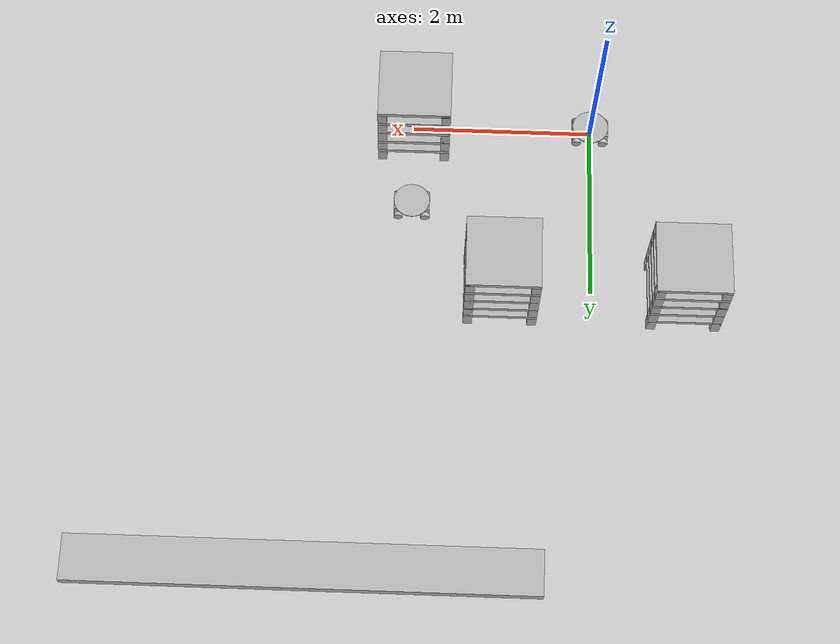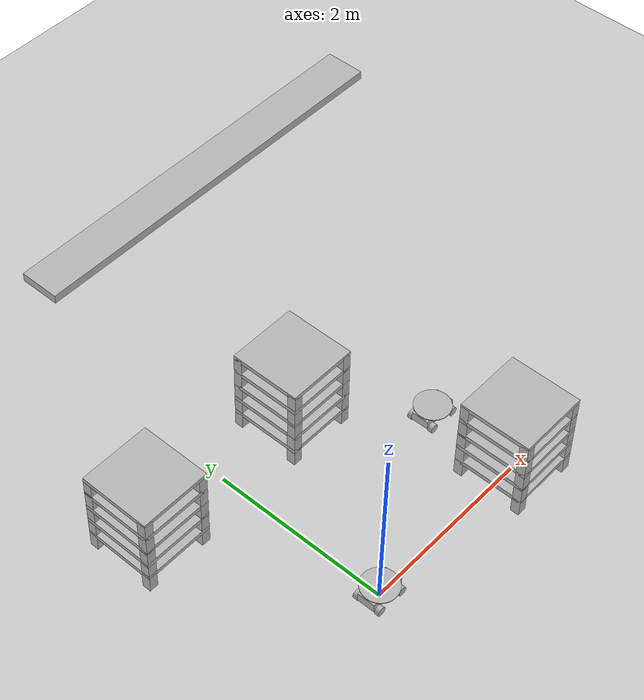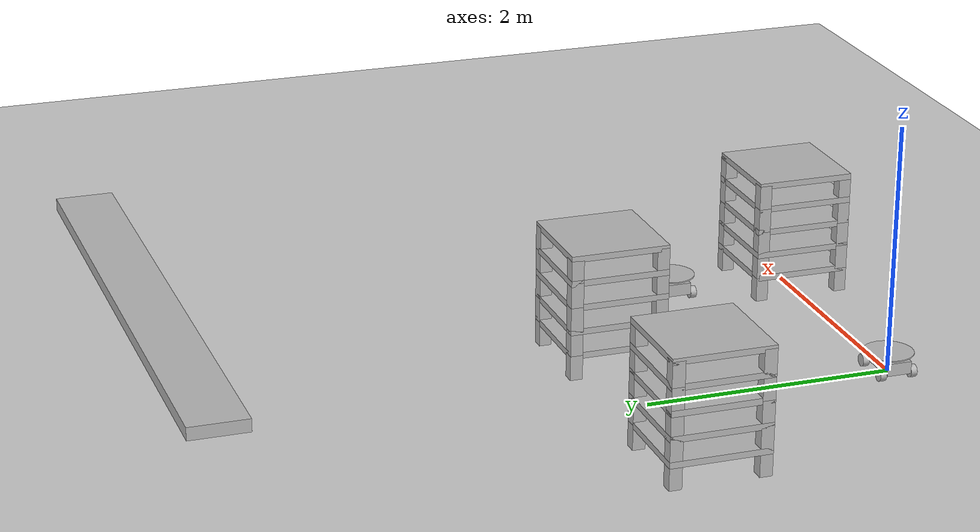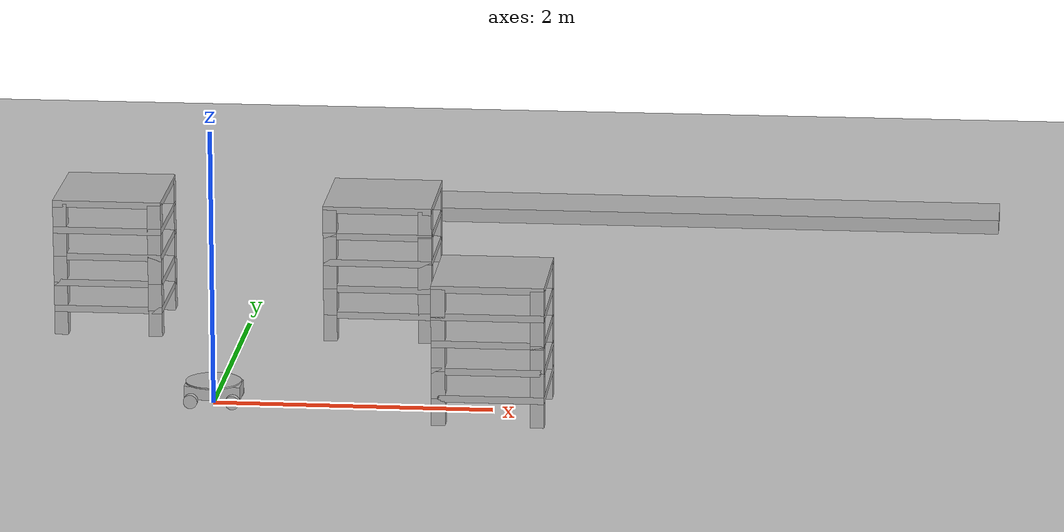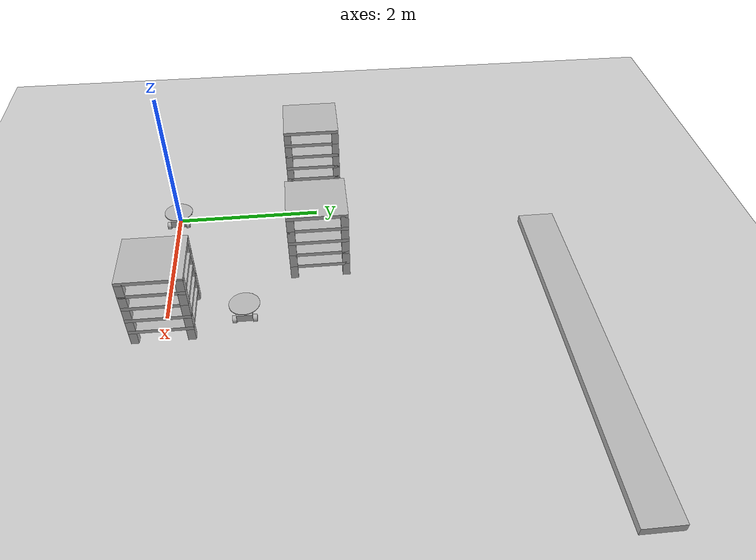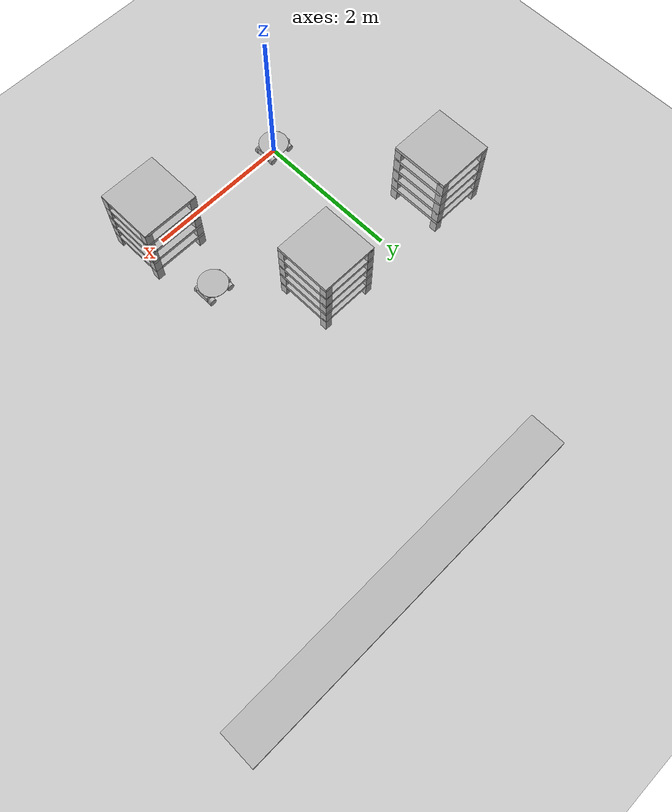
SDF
<?xml version="1.0" ?>
<sdf version="1.5">
	<world name="warehouse">
	<!-- A global light source -->
		<include>
			<uri>model://sun</uri>
		</include>
		<!-- A ground plane -->
		<include>
			<uri>model://ground_plane</uri>
		</include>
		<include>
			<uri>model://kiva</uri>
			<pose>0 0 0 0 0 0</pose>
			<name>kiva_1</name>
		</include>
		<include>
			<uri>model://kiva</uri>
			<pose>2 1 0 0 0 0</pose>
			<name>kiva_2</name>
		</include>
		<include>
			<uri>model://storage_unit</uri>
			<pose>2 0 0 0 0 0</pose>
			<name>storage_unit_1</name>
		</include>
		<include>
			<uri>model://storage_unit</uri>
			<pose>1 2 0 0 0 0</pose>
			<name>storage_unit_2</name>
		</include>
		<include>
			<uri>model://storage_unit</uri>
			<pose>-1 2 0 0 0 0</pose>
			<name>storage_unit_3</name>
		</include>
		<model name="my_model">
  <pose>3 5.2 0 0 0 0</pose>
  <static>true</static>
    <link name="link">
      <collision name="collision">
        <geometry>
          <box>
            <size>5 0.5 0.2</size>
          </box>
        </geometry>
      </collision>
      <visual name="visual">
        <geometry>
          <box>
            <size>5 0.5 0.2</size>
          </box>
        </geometry>
      </visual>
    </link>
  </model>
	</world>
</sdf>

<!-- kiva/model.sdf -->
<sdf version="1.6">
<!-- kiva model -->
		<model name="kiva">
			<static>false</static>
			<link name='chassis'>
           		<pose>0 0 .1 0 0 0</pose>
		        <collision name='collision'>
		         	<geometry>
		           		<box>
		              		<size>.4 .2 .1</size>
		            		</box>
		          	</geometry>
		        	</collision>

		        <visual name='visual'>
		        		<geometry>
		            		<box>
		              		<size>.4 .2 .1</size>
		            		</box>
		          	</geometry>
		        </visual>
          	</link>
          	<link name="left_front_wheel">
        			<pose>0.15 0.13 0.05 0 1.5707 1.5707</pose>
        			<collision name="collision">
          			<geometry>
            				<cylinder>
              				<radius>.05</radius>
              				<length>.05</length>
            				</cylinder>
          			</geometry>
        			</collision>
        			<visual name="visual">
          			<geometry>
            				<cylinder>
              				<radius>.05</radius>
              				<length>.05</length>
            				</cylinder>
          			</geometry>
        			</visual>
      		</link>
      		<link name="left_back_wheel">
        			<pose>-0.15 0.13 0.05 0 1.5707 1.5707</pose>
        			<collision name="collision">
          			<geometry>
            				<cylinder>
              				<radius>.05</radius>
              				<length>.05</length>
            				</cylinder>
          			</geometry>
        			</collision>
        			<visual name="visual">
          			<geometry>
            				<cylinder>
              				<radius>.05</radius>
              				<length>.05</length>
            				</cylinder>
          			</geometry>
        			</visual>
      		</link>
      		<link name="right_front_wheel">
        			<pose>0.15 -0.13 0.05 0 1.5707 1.5707</pose>
        			<collision name="collision">
          			<geometry>
            				<cylinder>
              				<radius>.05</radius>
              				<length>.05</length>
            				</cylinder>
          			</geometry>
        			</collision>
        			<visual name="visual">
          			<geometry>
            				<cylinder>
              				<radius>.05</radius>
              				<length>.05</length>
            				</cylinder>
          			</geometry>
        			</visual>
      		</link>
      		<link name="right_back_wheel">
        			<pose>-0.15 -0.13 0.05 0 1.5707 1.5707</pose>
        			<collision name="collision">
          			<geometry>
            				<cylinder>
              				<radius>.05</radius>
              				<length>.05</length>
           				</cylinder>
          			</geometry>
        			</collision>
        			<visual name="visual">
          			<geometry>
            				<cylinder>
              				<radius>.05</radius>
              				<length>.05</length>
            				</cylinder>
          			</geometry>
       			</visual>
      		</link>
      		<link name="tower">
      			<visual name="tower">
        				<pose>0.00 0.00 0.15 0 0 0</pose>
        				<geometry>
          				<box>
            					<size>0.09 0.09 0.02</size>
          				</box>
        				</geometry>
      			</visual>
       			<collision name="tower">
        				<pose>0.00 0.00 0.16 0 0 0</pose>
        				<geometry>
          				<box>
            					<size>0.09 0.09 0.02</size>
          				</box>
        				</geometry>
      			</collision>
		</link>
		<link name="tower_plate">
      			<visual name="tower_plate">
        				<pose>0 0 0.165 0 0 0</pose>
        				<geometry>
          				<cylinder>
            					<length>0.01</length>
            					<radius>0.2</radius>
          				</cylinder>
        				</geometry>
      			</visual>
      			<collision name="tower_plate">
        				<pose>0 0 0.165 0 0 0</pose>
        				<geometry>
          				<cylinder>
            					<length>0.01</length>
            					<radius>0.2</radius>
          				</cylinder>
        				</geometry>
      			</collision>
    			</link>
      		<joint type="revolute" name="left_front_wheel_hinge">
        			<pose>0 0 -0.03 0 0 0</pose>
        			<child>left_front_wheel</child>
        			<parent>chassis</parent>
        			<axis>
          			<xyz>0 0 1</xyz>
       			</axis>
      		</joint>
			<joint type="revolute" name="left_back_wheel_hinge">
        			<pose>0 0 -0.03 0 0 0</pose>
        			<child>left_back_wheel</child>
        			<parent>chassis</parent>
        			<axis>
          			<xyz>0 0 1</xyz>
       			</axis>
      		</joint>
      		<joint type="revolute" name="right_front_wheel_hinge">
        			<pose>0 0 0.03 0 0 0</pose>
        			<child>right_front_wheel</child>
        			<parent>chassis</parent>
        			<axis>
          			<xyz>0 0 1</xyz>
        			</axis>
      		</joint>
      		<joint type="revolute" name="right_back_wheel_hinge">
        			<pose>0 0 0.03 0 0 0</pose>
        			<child>right_back_wheel</child>
        			<parent>chassis</parent>
        			<axis>
          			<xyz>0 0 1</xyz>
        			</axis>
      		</joint>
      		<joint type="fixed" name="tower_body">
        			<pose>0 0 0 0 0 0</pose>
        			<child>tower</child>
        			<parent>chassis</parent>
      		</joint>
      		<joint type="fixed" name="tower_head">
        			<pose>0 0 0 0 0 0</pose>
        			<child>tower_plate</child>
        			<parent>tower</parent>
      		</joint>
	    <plugin name="kiva_rotate_center" filename="../kiva_plugins/build/libkiva_rotate_center.so">
			<direction>0</direction>
	    </plugin>
		</model>
</sdf>

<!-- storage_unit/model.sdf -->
<sdf version="1.6">
<!-- storage unit model -->
		<model name="storage_unit">
			<include>
				<uri>model://shelf</uri>
				<pose>0 0 0 0 0 0</pose>
				<name>shelf_1</name>
			</include>
			<include>
				<uri>model://shelf</uri>
				<pose>0 0 0.2 0 0 0</pose>
				<name>shelf_2</name>
			</include>
			<include>
				<uri>model://shelf</uri>
				<pose>0 0 0.4 0 0 0</pose>
				<name>shelf_3</name>
			</include>
			<include>
				<uri>model://shelf</uri>
				<pose>0 0 0.6 0 0 0</pose>
				<name>shelf_4</name>
			</include>
			<include>
				<uri>model://shelf</uri>
				<pose>0 0 0.8 0 0 0</pose>
				<name>shelf_5</name>
			</include>
			<joint type="fixed" name="shelf_1_joint">
        			<pose>0 0 0.2 0 0 0</pose>
        			<child>shelf_2::body</child>
        			<parent>shelf_1::body</parent>
                	</joint>
			<joint type="fixed" name="shelf_2_joint">
        			<pose>0 0 0.4 0 0 0</pose>
        			<child>shelf_3::body</child>
        			<parent>shelf_2::body</parent>
                	</joint>
			<joint type="fixed" name="shelf_3_joint">
        			<pose>0 0 0.6 0 0 0</pose>
        			<child>shelf_4::body</child>
        			<parent>shelf_3::body</parent>
                	</joint>
			<joint type="fixed" name="shelf_4_joint">
        			<pose>0 0 0.8 0 0 0</pose>
        			<child>shelf_5::body</child>
        			<parent>shelf_4::body</parent>
                	</joint>
		</model>
</sdf>

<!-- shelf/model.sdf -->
<sdf version="1.6">
<!-- shelf model -->
		<model name="shelf">
			<link name='body'>
           		<pose>0 0 0.2 0 0 0</pose>
		        <collision name='collision'>
		         	<geometry>
		           		<box>
		              		<size>.8 .8 .05</size>
		            		</box>
		          	</geometry>
		        	</collision>

		        <visual name='visual'>
		        		<geometry>
		            		<box>
		              		<size>.8 .8 .05</size>
		            		</box>
		          	</geometry>
		        </visual>
			</link>
			<link name="leg_1">
            <pose>0.35 0.35 0.1 0 0 0</pose>
		        <collision name='collision'>
		         	<geometry>
		           		<box>
		              		<size>.1 .1 0.20</size>
		            		</box>
		          	</geometry>
		        	</collision>
		        <visual name='visual'>
		        		<geometry>
		            		<box>
		              		<size>.1 .1 0.20</size>
		            		</box>
		          	</geometry>
		        </visual>
			</link>
            <link name="leg_2">
            <pose>-0.35 0.35 0.1 0 0 0</pose>
		        <collision name='collision'>
		         	<geometry>
		           		<box>
		              		<size>.1 .1 0.20</size>
		            		</box>
		          	</geometry>
		        	</collision>

		        <visual name='visual'>
		        		<geometry>
		            		<box>
		              		<size>.1 .1 0.20</size>
		            		</box>
		          	</geometry>
		        </visual>
			</link>
            <link name="leg_3">
            <pose>0.35 -0.35 0.1 0 0 0</pose>
		        <collision name='collision'>
		         	<geometry>
		           		<box>
		              		<size>.1 .1 0.20</size>
		            		</box>
		          	</geometry>
		        	</collision>
		        <visual name='visual'>
		        		<geometry>
		            		<box>
		              		<size>.1 .1 0.20</size>
		            		</box>
		          	</geometry>
		        </visual>
			</link>
            <link name="leg_4">
            <pose>-0.35 -0.35 0.1 0 0 0</pose>
		        <collision name='collision'>
		         	<geometry>
		           		<box>
		              		<size>.1 .1 0.20</size>
		            		</box>
		          	</geometry>
		        	</collision>
		        <visual name='visual'>
		        		<geometry>
		            		<box>
		              		<size>.1 .1 0.20</size>
		            		</box>
		          	</geometry>
		        </visual>
			</link>
            <joint type="fixed" name="leg_1_joint">
        			<pose>0 0 0 0 0 0</pose>
        			<child>leg_1</child>
        			<parent>body</parent>
                </joint>
                <joint type="fixed" name="leg_2_joint">
        			<pose>0 0 0 0 0 0</pose>
        			<child>leg_2</child>
        			<parent>body</parent>
                </joint>
                <joint type="fixed" name="leg_3_joint">
        			<pose>0 0 0 0 0 0</pose>
        			<child>leg_3</child>
        			<parent>body</parent>
                </joint>
                <joint type="fixed" name="leg_4_joint">
        			<pose>0 0 0 0 0 0</pose>
        			<child>leg_4</child>
        			<parent>body</parent>
                </joint>
</model>

</sdf>
